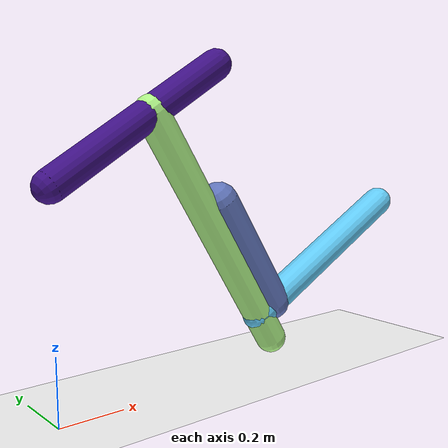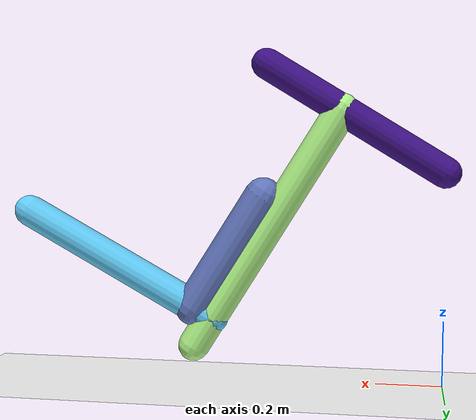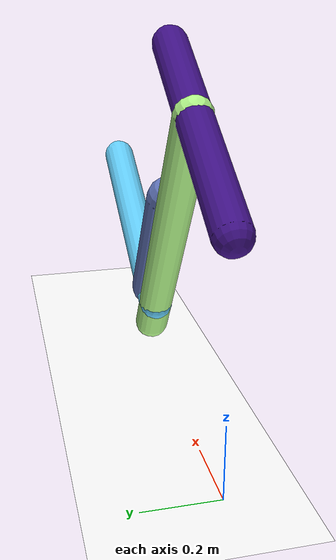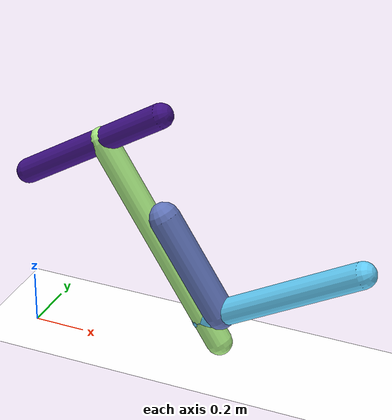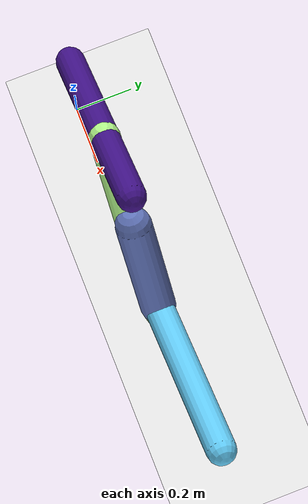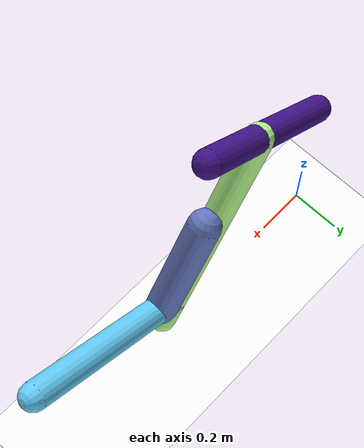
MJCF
<mujoco model="morphology">
  <option timestep="0.01"/>
  <default>
    <default class="/"/>
  </default>
  <asset>
    <texture name="texplane" type="2d" builtin="checker" rgb1="0.1 0.2 0.3" rgb2="0.2 0.3 0.4" width="300" height="300"/>
    <material name="MatPlane" class="/" texture="texplane" texrepeat="20 20" specular="1" shininess="1" reflectance="0.5"/>
  </asset>
  <worldbody>
    <light name="//unnamed_light_0" class="/" directional="true" pos="0 0 1.5" dir="0 0 -1.3" cutoff="1e+02" exponent="1" diffuse="1 1 1" specular="0.1 0.1 0.1"/>
    <geom name="ground" class="/" type="plane" size="15 15 0.5" material="MatPlane" rgba="1 1 1 1"/>
    <body name="body" pos="0 0 0.65">
      <geom name="geom0" class="/" type="capsule" contype="1" conaffinity="1" condim="3" size="0.047" rgba="0.25 0.068 0.53 1" friction="0.4 0.1 0.1" fromto="0 0 0 0.54 0 0.33"/>
      <body name="body1" pos="0.31 0 0.19">
        <geom name="geom1" class="/" type="capsule" contype="1" conaffinity="1" condim="3" size="0.05" rgba="0.7 0.97 0.54 1" friction="0.4 0.1 0.1" fromto="0 0 0 0.46 0 -0.74"/>
        <body name="body2" pos="0.4 0 -0.65">
          <geom name="geom2" class="/" type="capsule" contype="1" conaffinity="1" condim="3" size="0.05" rgba="0.39 0.81 0.98 1" friction="0.4 0.1 0.1" fromto="0 0 0 0.6 0 0.33"/>
          <body name="body3" pos="0.06 0 0.033">
            <geom name="geom3" class="/" type="capsule" contype="1" conaffinity="1" condim="3" size="0.06" rgba="0.39 0.47 0.75 1" friction="0.4 0.1 0.1" fromto="0 0 0 -0.22 0 0.35"/>
            <joint name="joint3" class="/" type="hinge" axis="0 1 0" limited="true" stiffness="20" range="-50 50" armature="0.1" damping="2"/>
          </body>
          <joint name="joint2" class="/" type="hinge" axis="0 1 0" limited="true" stiffness="20" range="-32 32" armature="0.1" damping="2"/>
        </body>
        <joint name="joint1" class="/" type="hinge" axis="0 1 0" limited="true" stiffness="20" range="-34 34" armature="0.1" damping="2"/>
      </body>
      <joint name="rootx" class="/" type="slide" axis="1 0 0" limited="false" stiffness="0" armature="0" damping="0"/>
      <joint name="rootz" class="/" type="slide" axis="0 0 1" limited="false" stiffness="0" armature="0" damping="0"/>
      <joint name="rooty" class="/" type="hinge" axis="0 1 0" limited="false" stiffness="0" armature="0" damping="0"/>
    </body>
  </worldbody>
  <actuator>
    <motor name="motor3" class="/" ctrllimited="true" ctrlrange="-1 1" gear="1.2e+02" joint="joint3"/>
    <motor name="motor2" class="/" ctrllimited="true" ctrlrange="-1 1" gear="1.1e+02" joint="joint2"/>
    <motor name="motor1" class="/" ctrllimited="true" ctrlrange="-1 1" gear="1.2e+02" joint="joint1"/>
  </actuator>
  <sensor>
    <subtreelinvel name="velocity" body="body"/>
  </sensor>
</mujoco>
